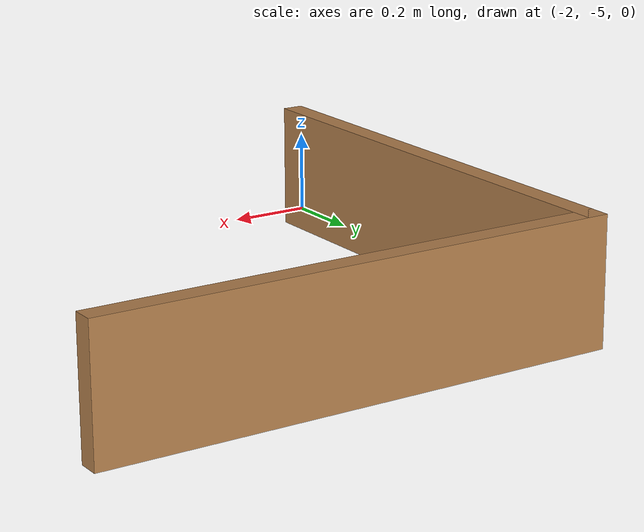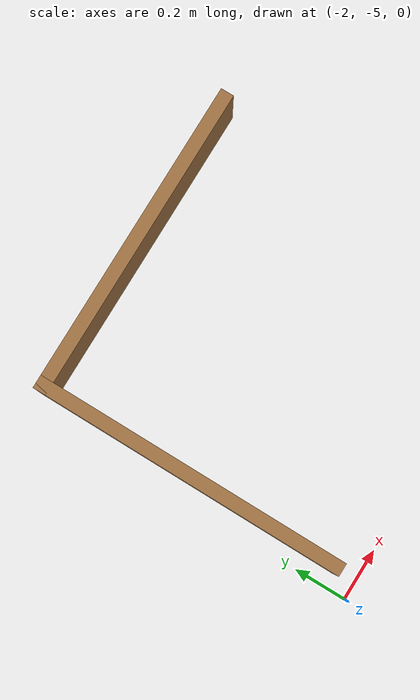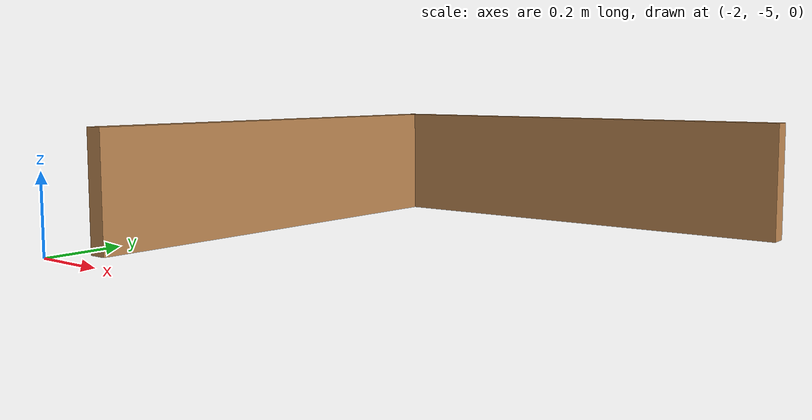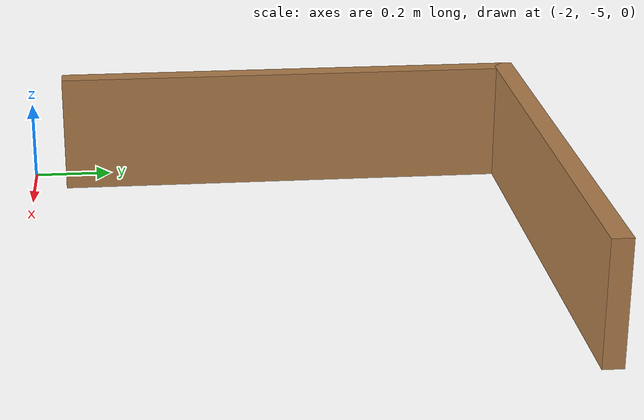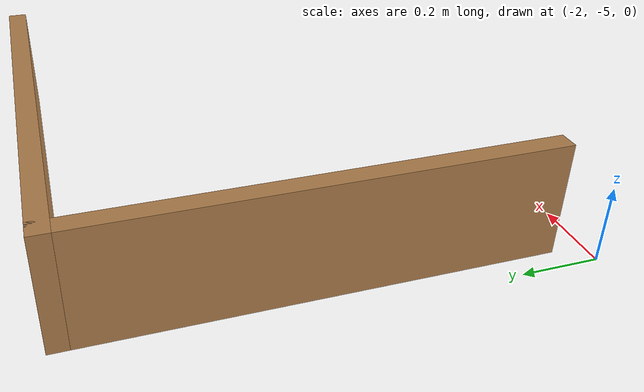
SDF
<?xml version='1.0'?>
<sdf version='1.7'>
  <model name='corner120'>
    <pose>-0.9725 -2.4575 0 0 -0 0</pose>
    <link name='Wall_29'>
      <collision name='Wall_29_Collision'>
        <geometry>
          <box>
            <size>1.2087 0.05 0.3</size>
          </box>
        </geometry>
        <pose>0 0 0.15 0 -0 0</pose>
      </collision>
      <visual name='Wall_29_Visual'>
        <pose>0 0 0.15 0 -0 0</pose>
        <geometry>
          <box>
            <size>1.2087 0.05 0.3</size>
          </box>
        </geometry>
        <material>
          <script>
            <uri>file://media/materials/scripts/gazebo.material</uri>
            <name>Gazebo/Wood</name>
          </script>
          <ambient>1 1 1 1</ambient>
        </material>
        <meta>
          <layer>0</layer>
        </meta>
      </visual>
      <pose>-0.368152 -1.2825 0 0 -0 0</pose>
    </link>
    <link name='Wall_34'>
      <collision name='Wall_34_Collision'>
        <geometry>
          <box>
            <size>1.2 0.05 0.3</size>
          </box>
        </geometry>
        <pose>0 0 0.15 0 -0 0</pose>
      </collision>
      <visual name='Wall_34_Visual'>
        <pose>0 0 0.15 0 -0 0</pose>
        <geometry>
          <box>
            <size>1.2 0.05 0.3</size>
          </box>
        </geometry>
        <material>
          <script>
            <uri>file://media/materials/scripts/gazebo.material</uri>
            <name>Gazebo/Wood</name>
          </script>
          <ambient>1 1 1 1</ambient>
        </material>
        <meta>
          <layer>0</layer>
        </meta>
      </visual>
      <pose>-0.9475 -1.8575 0 0 -0 -1.5708</pose>
    </link>
    <static>1</static>
  </model>
</sdf>
